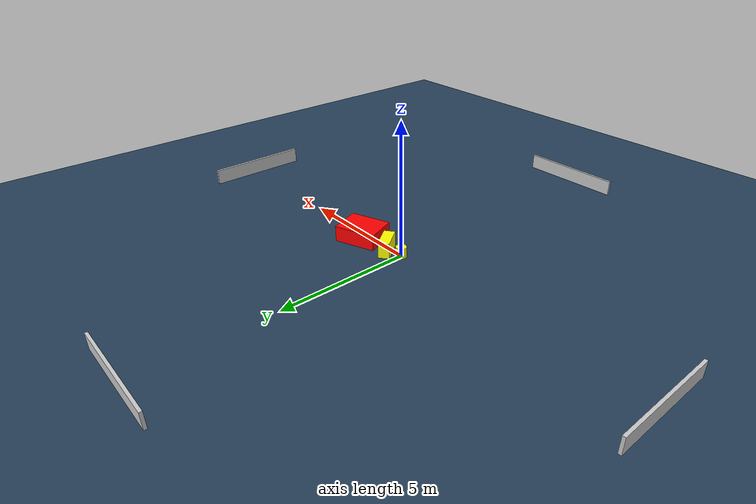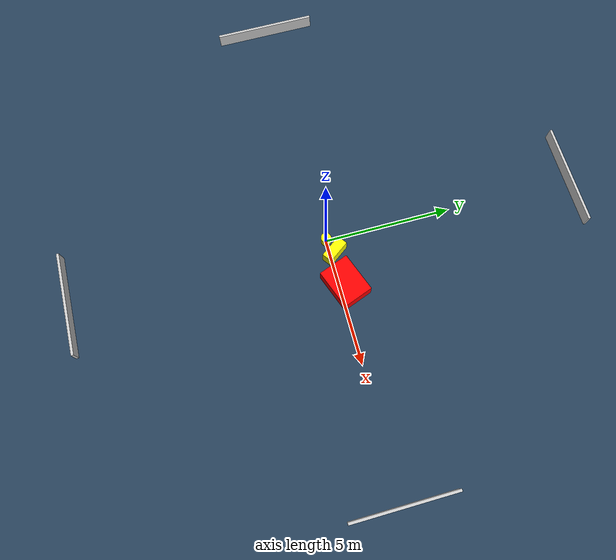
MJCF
<?xml version="1.0" ?>
<mujoco model="generated_environment">
  <option timestep="0.01" integrator="RK4" cone="elliptic"/>
  <default>
    <geom density="1"/>
  </default>
  <asset>
    <texture builtin="gradient" height="3072" name="skybox" rgb1="0.3 0.5 0.7" rgb2="0 0 0" type="skybox" width="512"/>
    <texture builtin="checker" height="300" name="groundplane" rgb1="0.2 0.3 0.4" rgb2="0.1 0.2 0.3" type="2d" width="300"/>
    <material name="groundplane" reflectance="0.2" texrepeat="5 5" texture="groundplane"/>
  </asset>
  <worldbody>
    <light dir="0 0 -1" directional="true" pos="0 0 1.5"/>
    <geom condim="3" friction="0.5 0.005 0.001" material="groundplane" name="floor" pos="0 0 0" size="0 0 0.05" type="plane"/>
    <body name="walls">
      <geom name="wall_1" condim="4" pos="-10.0 0.0 0.3" rgba="0.800000011920929 0.800000011920929 0.800000011920929 1.0" size="0.05 2.0 0.3" type="box"/>
      <geom name="wall_2" condim="4" pos="10.0 0.0 0.3" rgba="0.800000011920929 0.800000011920929 0.800000011920929 1.0" size="0.05 2.0 0.3" type="box"/>
      <geom name="wall_3" condim="4" pos="0.0 -10.0 0.3" rgba="0.800000011920929 0.800000011920929 0.800000011920929 1.0" size="2.0 0.05 0.3" type="box"/>
      <geom name="wall_4" condim="4" pos="0.0 10.0 0.3" rgba="0.800000011920929 0.800000011920929 0.800000011920929 1.0" size="2.0 0.05 0.3" type="box"/>
    </body>
    <body name="robot">
      <joint name="joint_x" type="slide" pos="0 0 0" axis="1 0 0"/>
      <joint name="joint_y" type="slide" pos="0 0 0" axis="0 1 0"/>
      <geom name="robot" type="cylinder" pos="0.0 0.0 0.2" size="0.2 0.2 0.0" mass="5.0" friction="1.0 0.005 0.0001" condim="4" rgba="1.0 1.0 0.0 1.0"/>
    </body>
    <body name="obstacle_1_movable">
      <geom name="obstacle_1_movable" condim="4" pos="0.5889021034321982 0.17992156428674522 0.3" euler="0 0 216.144726061096" friction="0.0 0.005 0.001" rgba="1.0 1.0 0.0 1.0" size="0.20660373705177526 0.4739495629877813 0.3" type="box" mass="0.1"/>
      <joint type="free"/>
    </body>
    <body name="obstacle_2_static">
      <geom name="obstacle_2_static" condim="4" pos="1.9144933791388707 0.23309076424589933 0.3" euler="0 0 20.406922007352737" friction="0.0 0.005 0.001" rgba="1.0 0.0 0.0 1.0" size="0.7945013500601006 0.6068272768753269 0.3" type="box"/>
    </body>
  </worldbody>
  <actuator>
    <motor name="actuator_x" joint="joint_x" gear="1" ctrlrange="-1 1"/>
    <motor name="actuator_y" joint="joint_y" gear="1" ctrlrange="-1 1"/>
  </actuator>
</mujoco>
